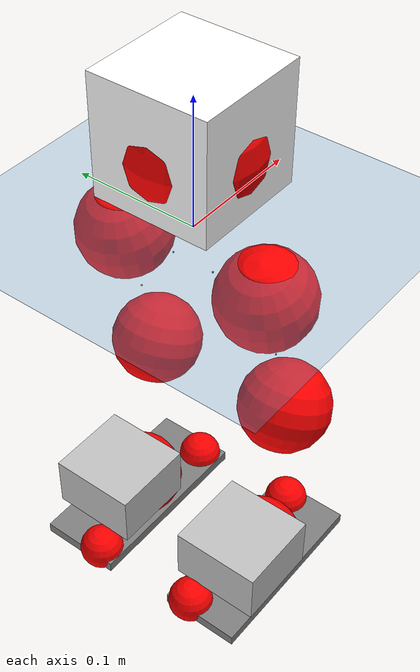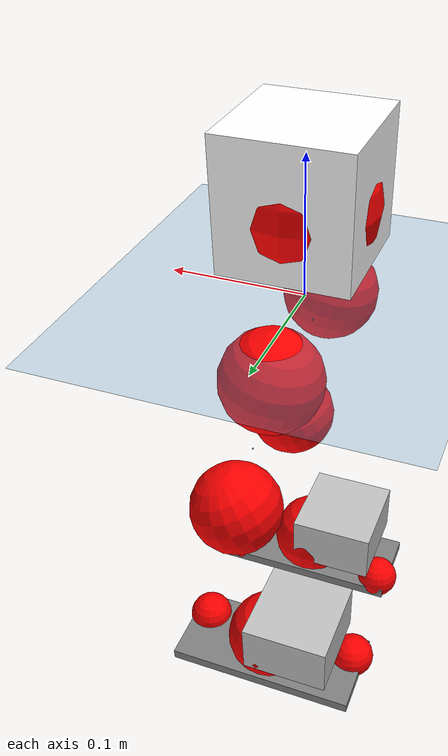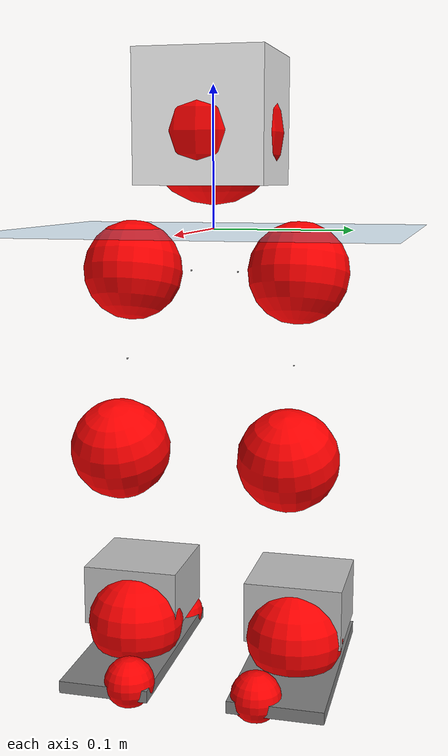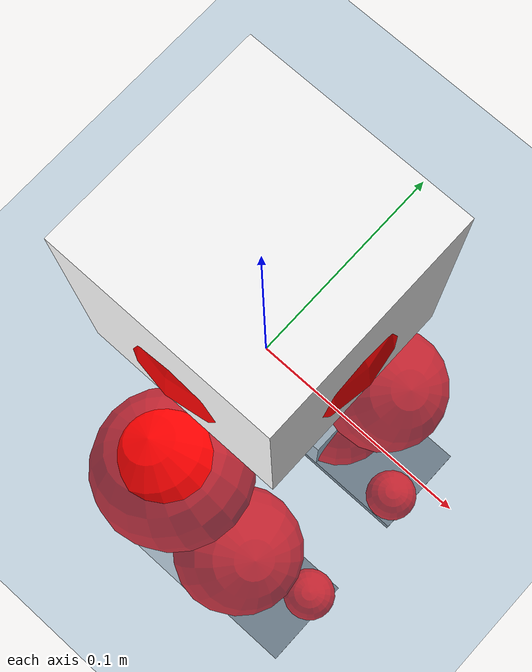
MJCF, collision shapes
<mujoco model="pi_12dof_release_v1">
  <compiler angle="radian" assetdir="assets" balanceinertia="true" inertiafromgeom="false"/>

  <option timestep="0.005" density="1.2" viscosity="2e-05"/>

  <size nkey="1"/>

  <visual>
    <quality shadowsize="8192"/>
    <map shadowclip="0.5"/>
  </visual>

  <default>
    <default class="/">
      <joint armature="0.01" damping="0.01" frictionloss="0.01"/>
      <geom contype="0" conaffinity="0" group="1" solref="-1000 -80"/>
      <site size="0.01 0.005 0.005" group="5"/>
      <general forcelimited="true" biastype="affine" gainprm="20" biasprm="0 -20 -0.5"/>
      <default class="foot">
        <geom size="0.0845 0.036 0.005" type="box" condim="6" group="4" priority="1" friction="0.9 0.2 0.2" solimp="0.015 1 0.005"/>
      </default>
      <default class="reward_collision_sphere">
        <geom group="5" rgba="1 0 0 1"/>
      </default>
    </default>
  </default>

  <asset>
    <texture type="skybox" colorspace="auto" name="//unnamed_texture_0" builtin="gradient" rgb1="0.95 0.95 0.95" rgb2="0.95 0.95 0.95" width="100" height="600"/>
    <texture type="2d" colorspace="auto" name="texplane" builtin="checker" rgb1="0.345 0.575 0.748" rgb2="0.345 0.575 0.748" markrgb="1 1 1" width="512" height="512"/>
    <material name="MatPlane" class="/" texture="texplane" texuniform="true" texrepeat="2 2" specular="0.9"/>
    <mesh name="baselink_1" class="/" file="baselink_1.STL"/>
    <mesh name="r_hip_pitch_link" class="/" file="r_hip_pitch_link.STL"/>
    <mesh name="r_hip_roll_link" class="/" file="r_hip_roll_link.STL"/>
    <mesh name="r_thigh_link" class="/" file="r_thigh_link.STL"/>
    <mesh name="r_calf_link" class="/" file="r_calf_link.STL"/>
    <mesh name="r_ankle_pitch_link" class="/" file="r_ankle_pitch_link.STL"/>
    <mesh name="r_ankle_roll_link" class="/" file="r_ankle_roll_link.STL"/>
    <mesh name="l_hip_pitch_link" class="/" file="l_hip_pitch_link.STL"/>
    <mesh name="l_hip_roll_link" class="/" file="l_hip_roll_link.STL"/>
    <mesh name="l_thigh_link" class="/" file="l_thigh_link.STL"/>
    <mesh name="l_calf_link" class="/" file="l_calf_link.STL"/>
    <mesh name="l_ankle_pitch_link" class="/" file="l_ankle_pitch_link.STL"/>
    <mesh name="l_ankle_roll_link" class="/" file="l_ankle_roll_link.STL"/>
  </asset>

  <worldbody>
    <geom name="floor" class="/" size="100 100 0.125" type="plane" group="0" material="MatPlane"/>
    <light name="toplight_shadow" class="/" pos="0 0 5" dir="0.0990148 0.0990148 -0.990148" type="directional" ambient="0.04 0.04 0.04" diffuse="0.55 0.55 0.55" specular="0.12 0.12 0.12"/>
    <light name="toplight_fill" class="/" pos="0 0 5" dir="0.0990148 0.0990148 -0.990148" type="directional" castshadow="false" ambient="0.04 0.04 0.04" diffuse="0.3 0.3 0.3" specular="0.08 0.08 0.08"/>
    <body name="trunk" pos="2.51287e-05 -4.60106e-06 0.000721076" quat="1 4.32933e-05 2.67502e-06 7.07586e-05">
      <inertial pos="0.00205419 -0.000288161 0.0378464" quat="0.69531 0.00963974 0.00939235 0.718584" mass="1.66108" diaginertia="0.00949983 0.00289649 0.00319251"/>
      <joint name="//unnamed_joint_0" type="free"/>
      <geom name="//unnamed_geom_1" class="/" type="mesh" density="0" rgba="1 1 1 1" mesh="baselink_1"/>
      <geom name="//unnamed_geom_2" class="/" size="0.0455567 0.0455567 0.0455567" pos="0 0 0.0756669" type="box" rgba="1 1 1 1"/>
      <geom name="//unnamed_geom_3" class="reward_collision_sphere" size="0.0501123" pos="0 0 0.0662085"/>
      <site name="imu" class="/" pos="-0.000918954 0.00459212 -0.00174738" size="0.00911133"/>
      <camera name="track" class="/" pos="0 -1.59132 0" quat="0.707107 0.707107 0 0" mode="trackcom"/>
      <camera name="ego_camera" class="/" pos="0.0743929 0 0.170251" quat="-0.5 -0.5 0.5 0.5"/>
      <body name="r_hip_pitch_link" pos="-0.000409482 -0.0168985 -0.0308188" quat="0.992197 -2.00712e-06 -0.124684 6.50802e-05">
        <inertial pos="0.00115065 -0.0449579 0.000873093" quat="-0.0177188 0.705073 -0.0282261 0.708351" mass="0.278297" diaginertia="0.000104104 3.15636e-05 6.20386e-05"/>
        <joint name="r_hip_pitch_joint" class="/" pos="0 0 0" axis="0.00272127 -0.999965 0.00788536" range="-1.75255 1.26649" armature="0.00953342" damping="0.0154555" frictionloss="0.00936894"/>
        <geom name="//unnamed_geom_4" class="/" type="mesh" density="0" rgba="0.75294 0.75294 0.75294 1" mesh="r_hip_pitch_link"/>
        <geom name="//unnamed_geom_5" class="/" size="0.000455567 0.000455567 0.000455567" type="box" rgba="0.75294 0.75294 0.75294 1"/>
        <body name="r_hip_roll_link" pos="0.000313186 -0.0441236 -0.000669035" quat="1 -4.3807e-05 -2.12091e-05 3.56474e-05">
          <inertial pos="-0.00116573 0.000166478 -0.0572862" quat="0.706096 -0.0780128 -0.0833706 0.698851" mass="0.294521" diaginertia="0.000322324 8.7999e-05 9.58624e-05"/>
          <joint name="r_hip_roll_joint" class="/" pos="0 0 0" axis="-0.999998 4.95801e-06 -0.00180648" range="-0.119644 0.498567" armature="0.00890398" damping="0.00266172" frictionloss="0.00868767"/>
          <geom name="//unnamed_geom_6" class="/" type="mesh" density="0" rgba="0.75294 0.75294 0.75294 1" mesh="r_hip_roll_link"/>
          <geom name="//unnamed_geom_7" class="/" size="0.000455567 0.000455567 0.000455567" type="box" rgba="0.75294 0.75294 0.75294 1"/>
          <geom name="//unnamed_geom_8" class="reward_collision_sphere" size="0.0364453"/>
          <body name="r_thigh_link" pos="0.000268049 0.000130581 -0.0653264" quat="1 -9.05764e-05 2.06926e-05 -0.000142683">
            <inertial pos="0.000190844 0.000868519 -0.0448744" quat="0.73728 0.675588 2.44267e-07 -2.0952e-07" mass="0.0862065" diaginertia="0.0001201 3.01229e-05 4.40247e-05"/>
            <joint name="r_thigh_joint" class="/" pos="0 0 0" axis="0.00126732 0.000696312 -0.999999" range="-0.301222 0.605679" armature="0.00901767" damping="0.0028916" frictionloss="0.00918944"/>
            <geom name="//unnamed_geom_9" class="/" type="mesh" density="0" rgba="0.75294 0.75294 0.75294 1" mesh="r_thigh_link"/>
            <geom name="//unnamed_geom_10" class="/" size="0.000455567 0.000455567 0.000455567" type="box" rgba="0.75294 0.75294 0.75294 1"/>
            <body name="r_calf_link" pos="-0.000793601 -0.00090334 -0.0658025" quat="0.947645 1.74099e-05 0.319326 -8.59495e-05">
              <inertial pos="-7.68799e-06 -0.000260752 -0.0666103" quat="0.999983 -0.00302569 -0.000240137 0.00500711" mass="0.614225" diaginertia="0.00338215 0.00112424 0.000132207"/>
              <joint name="r_calf_joint" class="/" pos="0 0 0" axis="-0.0019623 -0.999998 -0.000330825" range="-1.63839 0.646959" armature="0.00916442" damping="0.00841614" frictionloss="0.00902931"/>
              <geom name="//unnamed_geom_11" class="/" type="mesh" density="0" rgba="0.75294 0.75294 0.75294 1" mesh="r_calf_link"/>
              <geom name="//unnamed_geom_12" class="/" size="0.000455567 0.000455567 0.000455567" type="box" rgba="0.75294 0.75294 0.75294 1"/>
              <geom name="//unnamed_geom_13" class="reward_collision_sphere" size="0.0364453"/>
              <body name="r_ankle_pitch_link" pos="0.00166464 -0.000301768 -0.132514" quat="0.98006 4.11109e-05 -0.198703 -3.58561e-05">
                <inertial pos="0.0048712 0.00240955 -0.000331899" quat="0.00221397 0.707112 -0.00219727 0.707095" mass="0.13629" diaginertia="0.000297775 7.22558e-05 9.25107e-05"/>
                <joint name="r_ankle_pitch_joint" class="/" pos="0 0 0" axis="0.00182062 -0.999991 -0.0038767" range="-1.28115 0.486946" armature="0.00915285" damping="0.0105685" frictionloss="0.00906844"/>
                <geom name="//unnamed_geom_14" class="/" type="mesh" density="0" rgba="0.75294 0.75294 0.75294 1" mesh="r_ankle_pitch_link"/>
                <geom name="//unnamed_geom_15" class="/" size="0.0355342 0.0364453 0.0227783" type="box" rgba="0.75294 0.75294 0.75294 1"/>
                <body name="r_ankle_roll_link" pos="0.076895 0.00242663 -0.000724328" quat="1 7.58043e-05 5.2354e-05 0.000139135">
                  <inertial pos="-0.02322 -0.000351793 -0.0129179" quat="0.560175 0.431162 0.433848 0.55864" mass="0.385718" diaginertia="0.00107315 0.000328928 0.000214386"/>
                  <joint name="r_ankle_roll_joint" class="/" pos="0 0 0" axis="-1 -0.000144798 -8.55134e-05" stiffness="0.000912815" range="-0.148348 0.142643" armature="0.00911296" damping="0.0056724" frictionloss="0.00959135"/>
                  <geom name="//unnamed_geom_16" class="/" type="mesh" density="0" rgba="0.75294 0.75294 0.75294 1" mesh="r_ankle_roll_link"/>
                  <geom name="//unnamed_geom_17" class="/" type="mesh" rgba="0.75294 0.75294 0.75294 1" mesh="r_ankle_roll_link"/>
                  <geom name="right_foot" class="foot" size="0.0779785 0.0328567 0.00441219" pos="-0.0505872 0 -0.0416168"/>
                  <geom name="//unnamed_geom_19" class="reward_collision_sphere" size="0.0364453" pos="-0.0495953 0 -0.0189167"/>
                  <geom name="//unnamed_geom_20" class="reward_collision_sphere" size="0.0182227" pos="0.0148786 0.0159132 -0.0378334"/>
                  <geom name="//unnamed_geom_21" class="reward_collision_sphere" size="0.0182227" pos="-0.119029 0.0159132 -0.0378334"/>
                  <site name="right_foot" class="foot" pos="-0.0505872 0 -0.0416168" size="0.00911133"/>
                </body>
              </body>
            </body>
          </body>
        </body>
      </body>
      <body name="l_hip_pitch_link" pos="0.000344613 0.0180142 -0.0311059" quat="0.992198 5.97681e-05 -0.12467 -0.000185333">
        <inertial pos="0.00167545 0.0427451 0.000404076" quat="-0.0373598 0.704636 0.0230074 0.708211" mass="0.290249" diaginertia="0.000123075 3.31734e-05 7.6931e-05"/>
        <joint name="l_hip_pitch_joint" class="/" pos="0 0 0" axis="9.31207e-05 0.999999 0.00152293" range="-1.25366 1.74606" armature="0.00870527" damping="0.00709613" frictionloss="0.00919058"/>
        <geom name="//unnamed_geom_22" class="/" type="mesh" density="0" rgba="0.75294 0.75294 0.75294 1" mesh="l_hip_pitch_link"/>
        <geom name="//unnamed_geom_23" class="/" size="0.000455567 0.000455567 0.000455567" type="box" rgba="0.75294 0.75294 0.75294 1"/>
        <body name="l_hip_roll_link" pos="0.000346353 0.0443513 -8.19803e-05" quat="1 -1.06374e-05 0.000105212 -0.000346339">
          <inertial pos="-0.00182348 0.000682098 -0.0582478" quat="0.699327 -0.0732875 -0.0788453 0.70665" mass="0.296851" diaginertia="0.000319949 9.01012e-05 9.68823e-05"/>
          <joint name="l_hip_roll_joint" class="/" pos="0 0 0" axis="-0.999994 0.0022248 -0.00283564" range="-0.477181 0.104438" armature="0.0093048" damping="0.00451665" frictionloss="0.00909977"/>
          <geom name="//unnamed_geom_24" class="/" type="mesh" density="0" rgba="0.75294 0.75294 0.75294 1" mesh="l_hip_roll_link"/>
          <geom name="//unnamed_geom_25" class="/" size="0.000455567 0.000455567 0.000455567" type="box" rgba="0.75294 0.75294 0.75294 1"/>
          <geom name="//unnamed_geom_26" class="reward_collision_sphere" size="0.0364453"/>
          <body name="l_thigh_link" pos="-0.000837344 1.82942e-05 -0.065651" quat="1 6.25947e-05 3.13066e-05 -8.15143e-06">
            <inertial pos="0.000164137 -0.00128665 -0.0445192" quat="0.675398 0.737454 1.32025e-05 -5.27158e-05" mass="0.0865548" diaginertia="0.000122026 3.08385e-05 4.53477e-05"/>
            <joint name="l_thigh_joint" class="/" pos="0 0 0" axis="0.00158075 0.00029385 -0.999999" range="-0.594726 0.297855" armature="0.0092653" damping="0.00118553" frictionloss="0.00943623"/>
            <geom name="//unnamed_geom_27" class="/" type="mesh" density="0" rgba="0.75294 0.75294 0.75294 1" mesh="l_thigh_link"/>
            <geom name="//unnamed_geom_28" class="/" size="0.000455567 0.000455567 0.000455567" type="box" rgba="0.75294 0.75294 0.75294 1"/>
            <body name="l_calf_link" pos="-0.000641699 -0.00036463 -0.0668739" quat="0.947649 -1.03574e-05 0.319314 -3.72949e-06">
              <inertial pos="0.000736468 0.00157754 -0.0654685" quat="0.999938 0.00743078 0.000941313 0.00829668" mass="0.620095" diaginertia="0.00337851 0.00113972 0.000133371"/>
              <joint name="l_calf_joint" class="/" pos="0 0 0" axis="-5.3415e-05 0.999999 -0.00146445" range="-0.641099 1.66881" armature="0.00905887" damping="0.00904482" frictionloss="0.00951723"/>
              <geom name="//unnamed_geom_29" class="/" type="mesh" density="0" rgba="0.75294 0.75294 0.75294 1" mesh="l_calf_link"/>
              <geom name="//unnamed_geom_30" class="/" size="0.000455567 0.000455567 0.000455567" type="box" rgba="0.75294 0.75294 0.75294 1"/>
              <geom name="//unnamed_geom_31" class="reward_collision_sphere" size="0.0364453"/>
              <body name="l_ankle_pitch_link" pos="0.000781875 0.00143512 -0.133832" quat="0.98004 6.65942e-05 -0.198799 0.000140934">
                <inertial pos="0.0049085 0.000515163 -0.000984766" quat="-0.00120305 0.706878 0.000413104 0.707334" mass="0.131269" diaginertia="0.000292015 6.96373e-05 8.93658e-05"/>
                <joint name="l_ankle_pitch_joint" class="/" pos="0 0 0" axis="0.000776118 0.999995 0.00290956" stiffness="0.000553379" range="-0.502765 1.30592" armature="0.00915016" damping="0.00235619" frictionloss="0.00890988"/>
                <geom name="//unnamed_geom_32" class="/" type="mesh" density="0" rgba="0.75294 0.75294 0.75294 1" mesh="l_ankle_pitch_link"/>
                <geom name="//unnamed_geom_33" class="/" size="0.0355342 0.0364453 0.0227783" type="box" rgba="0.75294 0.75294 0.75294 1"/>
                <body name="l_ankle_roll_link" pos="0.0746 0.000427235 -0.000166936" quat="1 -0.000178567 1.06067e-05 -0.000189384">
                  <inertial pos="-0.0244434 -4.60896e-05 -0.0135769" quat="0.558079 0.430018 0.433032 0.562242" mass="0.394939" diaginertia="0.00110516 0.000332111 0.000220111"/>
                  <joint name="l_ankle_roll_joint" class="/" pos="0 0 0" axis="-0.999977 -0.000339745 -0.00670278" range="-0.149992 0.125996" armature="0.00914841" damping="0.00926832" frictionloss="0.00857972"/>
                  <geom name="//unnamed_geom_34" class="/" type="mesh" density="0" rgba="0.75294 0.75294 0.75294 1" mesh="l_ankle_roll_link"/>
                  <geom name="//unnamed_geom_35" class="/" type="mesh" rgba="0.75294 0.75294 0.75294 1" mesh="l_ankle_roll_link"/>
                  <geom name="left_foot" class="foot" size="0.0788847 0.0343251 0.00449634" pos="-0.0505872 0 -0.0416168"/>
                  <geom name="//unnamed_geom_37" class="reward_collision_sphere" size="0.0364453" pos="-0.0495953 0 -0.0189167"/>
                  <geom name="//unnamed_geom_38" class="reward_collision_sphere" size="0.0182227" pos="0.0148786 -0.0159132 -0.0378334"/>
                  <geom name="//unnamed_geom_39" class="reward_collision_sphere" size="0.0182227" pos="-0.119029 -0.0159132 -0.0378334"/>
                  <site name="left_foot" class="foot" pos="-0.0505872 0 -0.0416168" size="0.00911133"/>
                </body>
              </body>
            </body>
          </body>
        </body>
      </body>
    </body>
  </worldbody>

  <contact>
    <pair class="/" geom1="floor" geom2="right_foot" name="//unnamed_contact_1"/>
    <pair class="/" geom1="floor" geom2="left_foot" name="//unnamed_contact_0"/>
  </contact>

  <actuator>
    <general name="r_hip_pitch_joint" class="/" joint="r_hip_pitch_joint" forcerange="-19.68 19.68" gainprm="18.5031" biasprm="0 -18.5031 -0.453776"/>
    <general name="r_hip_roll_joint" class="/" joint="r_hip_roll_joint" forcerange="-19.2217 19.2217" gainprm="18.5031" biasprm="0 -18.5031 -0.453776"/>
    <general name="r_thigh_joint" class="/" joint="r_thigh_joint" forcerange="-19.8238 19.8238" gainprm="18.5031" biasprm="0 -18.5031 -0.453776"/>
    <general name="r_calf_joint" class="/" joint="r_calf_joint" forcerange="-19.0377 19.0377" gainprm="18.5031" biasprm="0 -18.5031 -0.453776"/>
    <general name="r_ankle_pitch_joint" class="/" joint="r_ankle_pitch_joint" forcerange="-18.464 18.464" gainprm="18.5031" biasprm="0 -18.5031 -0.453776"/>
    <general name="r_ankle_roll_joint" class="/" joint="r_ankle_roll_joint" forcerange="-19.3241 19.3241" gainprm="18.5031" biasprm="0 -18.5031 -0.453776"/>
    <general name="l_hip_pitch_joint" class="/" joint="l_hip_pitch_joint" forcerange="-19.8092 19.8092" gainprm="18.5031" biasprm="0 -18.5031 -0.453776"/>
    <general name="l_hip_roll_joint" class="/" joint="l_hip_roll_joint" forcerange="-18.3494 18.3494" gainprm="18.5031" biasprm="0 -18.5031 -0.453776"/>
    <general name="l_thigh_joint" class="/" joint="l_thigh_joint" forcerange="-19.3657 19.3657" gainprm="18.5031" biasprm="0 -18.5031 -0.453776"/>
    <general name="l_calf_joint" class="/" joint="l_calf_joint" forcerange="-19.047 19.047" gainprm="18.5031" biasprm="0 -18.5031 -0.453776"/>
    <general name="l_ankle_pitch_joint" class="/" joint="l_ankle_pitch_joint" forcerange="-19.0276 19.0276" gainprm="18.5031" biasprm="0 -18.5031 -0.453776"/>
    <general name="l_ankle_roll_joint" class="/" joint="l_ankle_roll_joint" forcerange="-19.6727 19.6727" gainprm="18.5031" biasprm="0 -18.5031 -0.453776"/>
  </actuator>

  <sensor>
    <gyro site="imu" name="imu_angular_velocity"/>
    <velocimeter site="imu" name="imu_linear_velocity"/>
    <framelinvel objtype="site" objname="left_foot" name="left_foot_global_linear_velocity"/>
    <framelinvel objtype="site" objname="right_foot" name="right_foot_global_linear_velocity"/>
  </sensor>

  <keyframe>
    <key name="home" qpos="0 0 0.291 1 0 0 0 0.4 0 0 -0.8 0.4 0 -0.4 0 0 0.8 -0.4 0"/>
  </keyframe>
</mujoco>
